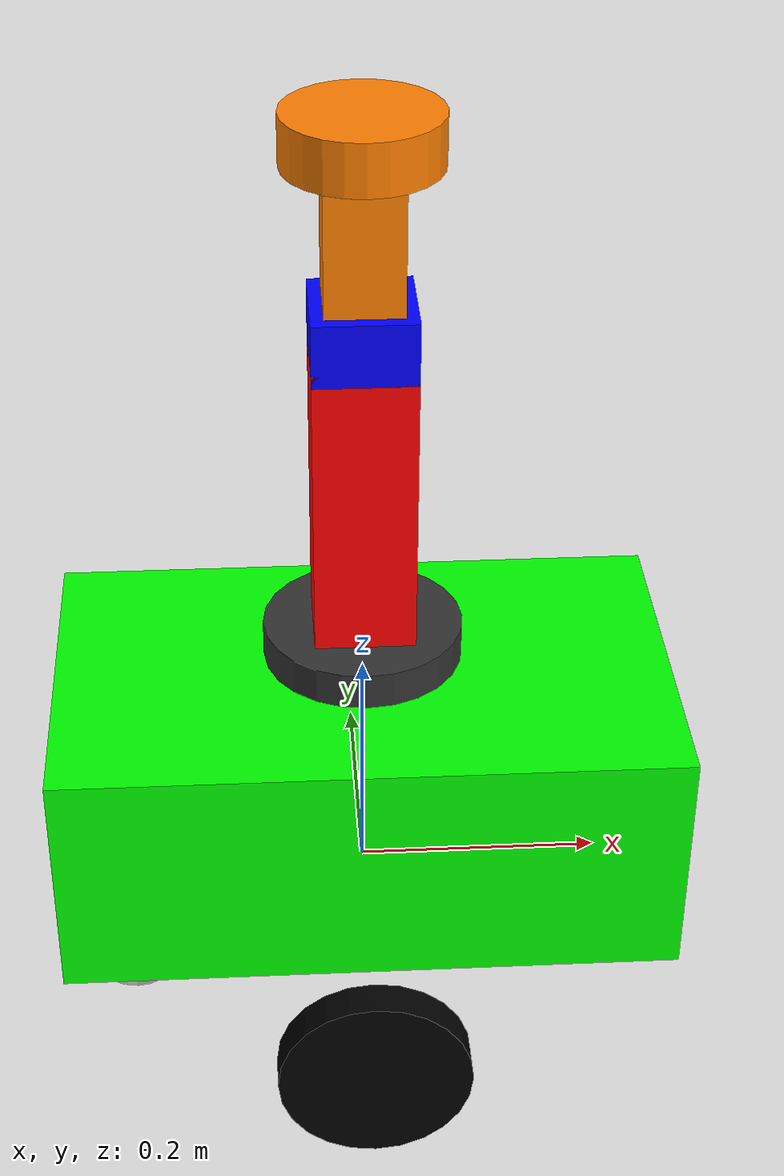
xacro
<?xml version="1.0"?>

<robot name="my_robot"
       xmlns:xacro="http://www.ros.org/wiki/xacro">

    <!-- Argument passed from launch -->
    <xacro:arg name="config_file" default=""/>
    <!-- Robot Properties -->
    <xacro:property name="base_length" value="0.5"/>
    <xacro:property name="base_width" value="0.3"/>
    <xacro:property name="base_height" value="0.2"/>

    <xacro:property name="wheel_radius" value="0.08"/>
    <xacro:property name="wheel_width" value="0.03"/>

    <!-- Include files -->
    <xacro:include filename="base.xacro"/>
    <xacro:include filename="wheels.xacro"/>
    <xacro:include filename="sensors.xacro"/>
    <xacro:include filename="arm.xacro"/>
    <xacro:include filename="ros2_control.xacro"/>

    <!-- Create the robot -->
    <xacro:base/>
    <xacro:wheels/>
    <xacro:sensors/>
    <xacro:arm/>

</robot>

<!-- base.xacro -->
<robot xmlns:xacro="http://www.ros.org/wiki/xacro">

  <xacro:macro name="base">

    <!-- Root Link -->
    <link name="base_footprint"/>

    <!-- Main Robot Body -->
    <link name="base_link">

      <!-- Visual -->
      <visual>
        <geometry>
          <box size="${base_length} ${base_width} ${base_height}"/>
        </geometry>

        <material name="green">
          <color rgba="0 1 0 1"/>
        </material>
      </visual>

      <!-- Collision -->
      <collision>
        <geometry>
          <box size="${base_length} ${base_width} ${base_height}"/>
        </geometry>
      </collision>

      <!-- Inertial -->
      <inertial>
        <origin xyz="0 0 0"/>
        <mass value="5.0"/>

        <inertia
          ixx="0.060"
          ixy="0.0"
          ixz="0.0"
          iyy="0.120"
          iyz="0.0"
          izz="0.150"/>
      </inertial>

    </link>

    <!-- Fixed Joint -->
    <joint name="base_footprint_joint" type="fixed">
      <parent link="base_footprint"/>
      <child link="base_link"/>
      <origin xyz="0 0 ${base_height/2}" rpy="0 0 0"/>
    </joint>

  </xacro:macro>

</robot>

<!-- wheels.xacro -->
<robot xmlns:xacro="http://www.ros.org/wiki/xacro">

  <!-- Single Wheel Macro                                     -->

  <xacro:macro name="wheel" params="name y">

    <link name="${name}">

      <visual>
        <origin rpy="1.5708 0 0"/>
        <geometry>
          <cylinder radius="${wheel_radius}" length="${wheel_width}"/>
        </geometry>

        <material name="black">
          <color rgba="0 0 0 1"/>
        </material>
      </visual>

      <collision>
        <origin rpy="1.5708 0 0"/>
        <geometry>
          <cylinder radius="${wheel_radius}" length="${wheel_width}"/>
        </geometry>
      </collision>

      <inertial>
        <origin xyz="0 0 0"/>
        <mass value="0.2"/>

        <inertia
          ixx="0.000335"
          ixy="0.0"
          ixz="0.0"
          iyy="0.000335"
          iyz="0.0"
          izz="0.00064"/>
      </inertial>

    </link>

    <joint name="${name}_joint" type="continuous">
      <parent link="base_link"/>
      <child link="${name}"/>

      <origin xyz="0 ${y} -0.18"/>

      <axis xyz="0 1 0"/>
    </joint>

  </xacro:macro>

  <!-- Wheels Macro                                           -->

  <xacro:macro name="wheels">

    <!-- Left Wheel -->
    <xacro:wheel
        name="left_wheel"
        y="0.18"/>

    <!-- Right Wheel -->
    <xacro:wheel
        name="right_wheel"
        y="-0.18"/>

    <!-- Caster Wheel -->
    <link name="caster_wheel">

      <visual>
        <geometry>
          <sphere radius="0.05"/>
        </geometry>

        <material name="white">
          <color rgba="1 1 1 1"/>
        </material>
      </visual>

      <collision>
        <geometry>
          <sphere radius="0.05"/>
        </geometry>
      </collision>

    </link>

    <joint name="caster_joint" type="fixed">
      <parent link="base_link"/>
      <child link="caster_wheel"/>

      <origin xyz="-0.2 0 -0.18"/>
    </joint>

  </xacro:macro>

</robot>

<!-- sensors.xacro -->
<robot xmlns:xacro="http://www.ros.org/wiki/xacro">

  <xacro:macro name="sensors">

    <!-- CAMERA MOUNT -->

    <link name="camera_mount">

      <visual>
        <geometry>
          <box size="0.05 0.05 0.25"/>
        </geometry>

        <material name="grey">
          <color rgba="0.5 0.5 0.5 1"/>
        </material>
      </visual>

      <collision>
        <geometry>
          <box size="0.05 0.05 0.25"/>
        </geometry>
      </collision>

      <inertial>
        <origin xyz="0 0 0"/>
        <mass value="0.2"/>

        <inertia
          ixx="0.001"
          ixy="0.0"
          ixz="0.0"
          iyy="0.001"
          iyz="0.0"
          izz="0.001"/>
      </inertial>

    </link>

    <!-- CAMERA -->

    <link name="camera_link">

      <visual>
        <geometry>
          <box size="0.08 0.08 0.05"/>
        </geometry>

        <material name="blue">
          <color rgba="0 0 1 1"/>
        </material>
      </visual>

      <collision>
        <geometry>
          <box size="0.08 0.08 0.05"/>
        </geometry>
      </collision>

      <inertial>
        <origin xyz="0 0 0"/>
        <mass value="0.1"/>

        <inertia
          ixx="0.0002"
          ixy="0.0"
          ixz="0.0"
          iyy="0.0002"
          iyz="0.0"
          izz="0.0002"/>
      </inertial>

    </link>

    <!-- LIDAR -->

    <link name="lidar_link">

      <visual>
        <geometry>
          <cylinder radius="0.06" length="0.04"/>
        </geometry>

        <material name="orange">
          <color rgba="1 0.5 0 1"/>
        </material>
      </visual>

      <collision>
        <geometry>
          <cylinder radius="0.06" length="0.04"/>
        </geometry>
      </collision>

      <inertial>
        <origin xyz="0 0 0"/>
        <mass value="0.15"/>

        <inertia
          ixx="0.0003"
          ixy="0.0"
          ixz="0.0"
          iyy="0.0003"
          iyz="0.0"
          izz="0.0003"/>
      </inertial>

    </link>

    <!-- JOINTS -->

    <joint name="camera_mount_joint" type="fixed">
      <parent link="base_link"/>
      <child link="camera_mount"/>
      <origin xyz="0 0 0.25"/>
    </joint>

    <joint name="camera_joint" type="fixed">
      <parent link="camera_mount"/>
      <child link="camera_link"/>
      <origin xyz="0 0 0.15"/>
    </joint>

    <joint name="lidar_joint" type="fixed">
      <parent link="camera_mount"/>
      <child link="lidar_link"/>
      <origin xyz="0 0 0.30"/>
    </joint>

  </xacro:macro>

</robot>

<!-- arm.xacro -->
<robot xmlns:xacro="http://www.ros.org/wiki/xacro">

  <xacro:macro name="arm">

    <!-- ARM BASE -->

    <link name="arm_base_link">

      <visual>
        <geometry>
          <cylinder radius="0.08" length="0.03"/>
        </geometry>

        <material name="dark">
          <color rgba="0.2 0.2 0.2 1"/>
        </material>
      </visual>

      <collision>
        <geometry>
          <cylinder radius="0.08" length="0.03"/>
        </geometry>
      </collision>

      <inertial>
        <origin xyz="0 0 0"/>
        <mass value="0.2"/>

        <inertia
          ixx="0.0002"
          ixy="0.0"
          ixz="0.0"
          iyy="0.0002"
          iyz="0.0"
          izz="0.0002"/>
      </inertial>

    </link>

    <joint name="arm_base_joint" type="fixed">
      <parent link="base_link"/>
      <child link="arm_base_link"/>
      <origin xyz="0 0 0.13"/>
    </joint>

    <!-- SHOULDER -->

    <link name="shoulder_link">

      <visual>
        <origin xyz="0 0 0.1"/>
        <geometry>
          <box size="0.08 0.08 0.25"/>
        </geometry>

        <material name="red">
          <color rgba="1 0 0 1"/>
        </material>
      </visual>

      <collision>
        <origin xyz="0 0 0.1"/>
        <geometry>
          <box size="0.08 0.08 0.25"/>
        </geometry>
      </collision>

      <inertial>
        <origin xyz="0 0 0.1"/>
        <mass value="0.3"/>

        <inertia
          ixx="0.00174"
          ixy="0.0"
          ixz="0.0"
          iyy="0.00174"
          iyz="0.0"
          izz="0.00032"/>
      </inertial>

    </link>

    <joint name="shoulder_joint" type="revolute">
      <parent link="arm_base_link"/>
      <child link="shoulder_link"/>
      <origin xyz="0 0 0.03"/>
      <axis xyz="0 1 0"/>

      <limit
          lower="-1.57"
          upper="1.57"
          effort="10"
          velocity="1"/>
    </joint>

    <!-- UPPER ARM -->

    <link name="upper_arm_link">

      <visual>
        <origin xyz="0 0 0.055"/>
        <geometry>
          <box size="0.06 0.06 0.11"/>
        </geometry>

        <material name="orange">
          <color rgba="1 0.5 0 1"/>
        </material>
      </visual>

      <collision>
        <origin xyz="0 0 0.055"/>
        <geometry>
          <box size="0.06 0.06 0.11"/>
        </geometry>
      </collision>

      <inertial>
        <origin xyz="0 0 0.055"/>
        <mass value="0.2"/>

        <inertia
          ixx="0.00023"
          ixy="0.0"
          ixz="0.0"
          iyy="0.00023"
          iyz="0.0"
          izz="0.00012"/>
      </inertial>

    </link>

    <joint name="elbow_joint" type="revolute">
      <parent link="shoulder_link"/>
      <child link="upper_arm_link"/>
      <origin xyz="0 0 0.25"/>
      <axis xyz="0 1 0"/>

      <limit
          lower="-1.57"
          upper="1.57"
          effort="10"
          velocity="1"/>
    </joint>

  </xacro:macro>

</robot>
